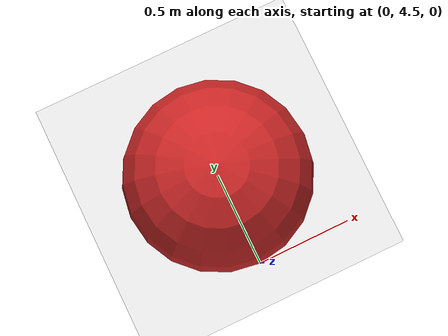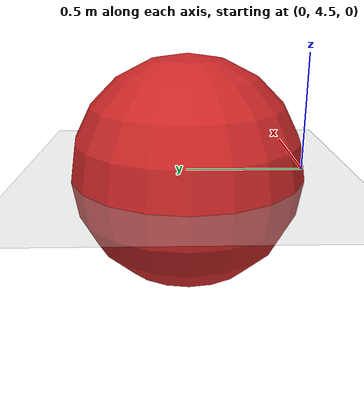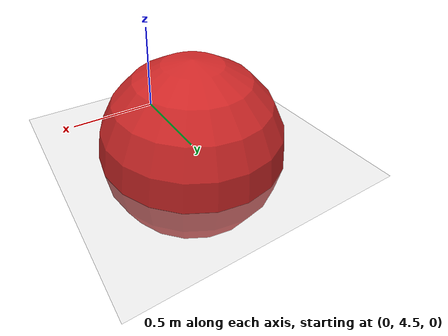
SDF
<?xml version="1.0" ?>
<sdf version="1.5">
	<world name="sky">
		<atmosphere type='adiabatic'/>
	    <scene>
	      <sky>
	        <clouds>
	          <speed>12</speed>
	        </clouds>
	      </sky>
	    </scene>

	    <include>
	    	<selfCollide>true</selfCollide>
	      <uri>model://particle_sphere</uri>
	      <name>particle_sphere</name>
	      <pose>0 5 0 0 0 0</pose>
	    </include>

		<include>
	      <uri>model://ground_plane</uri>
	    </include>

	    <!-- Global light source -->
	    <include>
	      <uri>model://sun</uri>
	    </include>

	    <physics name='default_physics' default='0' type='ode'>
	      <max_step_size>0.001</max_step_size>
	      <real_time_factor>1</real_time_factor>
	      <real_time_update_rate>1000</real_time_update_rate>
	    </physics>

	</world>
</sdf>

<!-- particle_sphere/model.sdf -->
<sdf version='1.5'>
  <model name="particle_sphere">
      <static>0</static>
      <link name='link'>
        <inertial>
          <mass>0.05</mass>
          <inertia>
            <ixx>9e-05</ixx>
            <ixy>0.000000</ixy>
            <ixz>0.000000</ixz>
            <iyy>9e-05</iyy>
            <iyz>0.000000</iyz>
            <izz>9e-05</izz>
          </inertia>
        </inertial>
        <collision name='collision'>
          <geometry>
            <sphere>
              <radius>0.03</radius>
            </sphere>
          </geometry>
          <surface>
            <friction>
              <ode>
                <mu>30.0</mu>
                <mu2>30.0</mu2>
              </ode>
            </friction>
            <contact>
              <ode>
                <kp>100000000.0</kp>
                <kd>10.0</kd>
                <max_vel>0.0</max_vel>
                <min_depth>0.0</min_depth>
              </ode>
            </contact>
          </surface>
        </collision>
        <visual name='visual'>
          <geometry>
            <sphere>
              <radius>0.5</radius>
            </sphere>
          </geometry>
          <material>
            <script>
              <uri>file://media/materials/scripts/gazebo.material</uri>
              <name>Gazebo/Red</name>
            </script>
          </material>
        </visual>
        <velocity_decay>
          <linear>0.000000</linear>
          <angular>0.000000</angular>
        </velocity_decay>
        <self_collide>1</self_collide>
        <kinematic>0</kinematic>
        <gravity>0</gravity>
      </link>
  </model>
</sdf>
